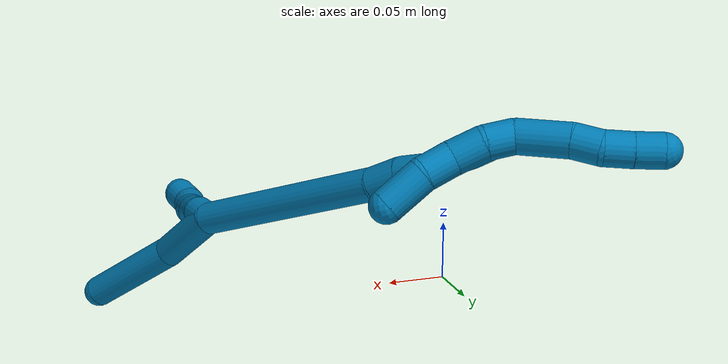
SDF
<sdf version="1.7">
 <world name="default">
  <model name="9">
   <static>0</static>
   <link name="9">
    <collision name="collision-cylinder-e_1_2_8">
     <pose>0.000753 -0.01478 -0.027156 2.64316 0.024357 0.095636</pose>
     <geometry><cylinder><radius>0.0125</radius><length>0.061853</length></cylinder></geometry>
     <surface>
      <friction><ode><mu>1.16</mu><mu2>1.16</mu2><slip1>0</slip1><slip2>0</slip2></ode></friction>
      <contact><ode><kp>1e+06</kp><kd>1</kd><max_vel>0</max_vel><min_depth>0.001</min_depth></ode></contact>
     </surface>
    </collision>
    <visual name="visual-cylinder-e_1_2_8">
     <pose>0.000753 -0.01478 -0.027156 2.64316 0.024357 0.095636</pose>
     <geometry><cylinder><radius>0.0125</radius><length>0.061853</length></cylinder></geometry>
     <material><ambient>0 0.490196 0.709804 1</ambient></material>
    </visual>
    <collision name="collision-cylinder-e_2_8_6">
     <pose>-0.000358 -0.042689 -0.096342 2.83882 -0.042324 -0.275712</pose>
     <geometry><cylinder><radius>0.0125</radius><length>0.088147</length></cylinder></geometry>
     <surface>
      <friction><ode><mu>1.16</mu><mu2>1.16</mu2><slip1>0</slip1><slip2>0</slip2></ode></friction>
      <contact><ode><kp>1e+06</kp><kd>1</kd><max_vel>0</max_vel><min_depth>0.001</min_depth></ode></contact>
     </surface>
    </collision>
    <visual name="visual-cylinder-e_2_8_6">
     <pose>-0.000358 -0.042689 -0.096342 2.83882 -0.042324 -0.275712</pose>
     <geometry><cylinder><radius>0.0125</radius><length>0.088147</length></cylinder></geometry>
     <material><ambient>0 0.490196 0.709804 1</ambient></material>
    </visual>
    <collision name="collision-cylinder-e_1_2_9">
     <pose>0.00679 -0.002431 -0.006927 2.80406 0.746361 2.32066</pose>
     <geometry><cylinder><radius>0.0125</radius><length>0.02</length></cylinder></geometry>
     <surface>
      <friction><ode><mu>1.16</mu><mu2>1.16</mu2><slip1>0</slip1><slip2>0</slip2></ode></friction>
      <contact><ode><kp>1e+06</kp><kd>1</kd><max_vel>0</max_vel><min_depth>0.001</min_depth></ode></contact>
     </surface>
    </collision>
    <visual name="visual-cylinder-e_1_2_9">
     <pose>0.00679 -0.002431 -0.006927 2.80406 0.746361 2.32066</pose>
     <geometry><cylinder><radius>0.0125</radius><length>0.02</length></cylinder></geometry>
     <material><ambient>0 0.490196 0.709804 1</ambient></material>
    </visual>
    <collision name="collision-cylinder-e_2_9_10">
     <pose>0.019555 -0.009613 -0.020314 2.50742 0.640435 1.58132</pose>
     <geometry><cylinder><radius>0.0125</radius><length>0.02</length></cylinder></geometry>
     <surface>
      <friction><ode><mu>1.16</mu><mu2>1.16</mu2><slip1>0</slip1><slip2>0</slip2></ode></friction>
      <contact><ode><kp>1e+06</kp><kd>1</kd><max_vel>0</max_vel><min_depth>0.001</min_depth></ode></contact>
     </surface>
    </collision>
    <visual name="visual-cylinder-e_2_9_10">
     <pose>0.019555 -0.009613 -0.020314 2.50742 0.640435 1.58132</pose>
     <geometry><cylinder><radius>0.0125</radius><length>0.02</length></cylinder></geometry>
     <material><ambient>0 0.490196 0.709804 1</ambient></material>
    </visual>
    <collision name="collision-cylinder-e_3_10_11">
     <pose>0.031889 -0.019558 -0.032483 2.40345 0.689097 1.49591</pose>
     <geometry><cylinder><radius>0.0125</radius><length>0.02</length></cylinder></geometry>
     <surface>
      <friction><ode><mu>1.16</mu><mu2>1.16</mu2><slip1>0</slip1><slip2>0</slip2></ode></friction>
      <contact><ode><kp>1e+06</kp><kd>1</kd><max_vel>0</max_vel><min_depth>0.001</min_depth></ode></contact>
     </surface>
    </collision>
    <visual name="visual-cylinder-e_3_10_11">
     <pose>0.031889 -0.019558 -0.032483 2.40345 0.689097 1.49591</pose>
     <geometry><cylinder><radius>0.0125</radius><length>0.02</length></cylinder></geometry>
     <material><ambient>0 0.490196 0.709804 1</ambient></material>
    </visual>
    <collision name="collision-cylinder-e_4_11_12">
     <pose>0.046 -0.028789 -0.04305 2.44814 0.887096 1.84124</pose>
     <geometry><cylinder><radius>0.0125</radius><length>0.02</length></cylinder></geometry>
     <surface>
      <friction><ode><mu>1.16</mu><mu2>1.16</mu2><slip1>0</slip1><slip2>0</slip2></ode></friction>
      <contact><ode><kp>1e+06</kp><kd>1</kd><max_vel>0</max_vel><min_depth>0.001</min_depth></ode></contact>
     </surface>
    </collision>
    <visual name="visual-cylinder-e_4_11_12">
     <pose>0.046 -0.028789 -0.04305 2.44814 0.887096 1.84124</pose>
     <geometry><cylinder><radius>0.0125</radius><length>0.02</length></cylinder></geometry>
     <material><ambient>0 0.490196 0.709804 1</ambient></material>
    </visual>
    <collision name="collision-cylinder-e_5_12_5">
     <pose>0.0611 -0.034055 -0.054578 2.95951 0.825379 2.73046</pose>
     <geometry><cylinder><radius>0.0125</radius><length>0.02</length></cylinder></geometry>
     <surface>
      <friction><ode><mu>1.16</mu><mu2>1.16</mu2><slip1>0</slip1><slip2>0</slip2></ode></friction>
      <contact><ode><kp>1e+06</kp><kd>1</kd><max_vel>0</max_vel><min_depth>0.001</min_depth></ode></contact>
     </surface>
    </collision>
    <visual name="visual-cylinder-e_5_12_5">
     <pose>0.0611 -0.034055 -0.054578 2.95951 0.825379 2.73046</pose>
     <geometry><cylinder><radius>0.0125</radius><length>0.02</length></cylinder></geometry>
     <material><ambient>0 0.490196 0.709804 1</ambient></material>
    </visual>
    <collision name="collision-cylinder-e_1_2_13">
     <pose>-0.01606 0.016022 0.082001 -0.192958 -0.189896 0.018433</pose>
     <geometry><cylinder><radius>0.0125</radius><length>0.170162</length></cylinder></geometry>
     <surface>
      <friction><ode><mu>1.16</mu><mu2>1.16</mu2><slip1>0</slip1><slip2>0</slip2></ode></friction>
      <contact><ode><kp>1e+06</kp><kd>1</kd><max_vel>0</max_vel><min_depth>0.001</min_depth></ode></contact>
     </surface>
    </collision>
    <visual name="visual-cylinder-e_1_2_13">
     <pose>-0.01606 0.016022 0.082001 -0.192958 -0.189896 0.018433</pose>
     <geometry><cylinder><radius>0.0125</radius><length>0.170162</length></cylinder></geometry>
     <material><ambient>0 0.490196 0.709804 1</ambient></material>
    </visual>
    <collision name="collision-cylinder-e_2_13_14">
     <pose>-0.032293 0.034395 0.176386 -0.187568 -0.013759 0.001294</pose>
     <geometry><cylinder><radius>0.0125</radius><length>0.025213</length></cylinder></geometry>
     <surface>
      <friction><ode><mu>1.16</mu><mu2>1.16</mu2><slip1>0</slip1><slip2>0</slip2></ode></friction>
      <contact><ode><kp>1e+06</kp><kd>1</kd><max_vel>0</max_vel><min_depth>0.001</min_depth></ode></contact>
     </surface>
    </collision>
    <visual name="visual-cylinder-e_2_13_14">
     <pose>-0.032293 0.034395 0.176386 -0.187568 -0.013759 0.001294</pose>
     <geometry><cylinder><radius>0.0125</radius><length>0.025213</length></cylinder></geometry>
     <material><ambient>0 0.490196 0.709804 1</ambient></material>
    </visual>
    <collision name="collision-cylinder-e_3_14_15">
     <pose>-0.035003 0.037924 0.199891 -0.105587 -0.223088 0.011838</pose>
     <geometry><cylinder><radius>0.0125</radius><length>0.022935</length></cylinder></geometry>
     <surface>
      <friction><ode><mu>1.16</mu><mu2>1.16</mu2><slip1>0</slip1><slip2>0</slip2></ode></friction>
      <contact><ode><kp>1e+06</kp><kd>1</kd><max_vel>0</max_vel><min_depth>0.001</min_depth></ode></contact>
     </surface>
    </collision>
    <visual name="visual-cylinder-e_3_14_15">
     <pose>-0.035003 0.037924 0.199891 -0.105587 -0.223088 0.011838</pose>
     <geometry><cylinder><radius>0.0125</radius><length>0.022935</length></cylinder></geometry>
     <material><ambient>0 0.490196 0.709804 1</ambient></material>
    </visual>
    <collision name="collision-cylinder-e_4_15_16">
     <pose>-0.036894 0.04209 0.220588 -0.302421 0.064364 -0.009811</pose>
     <geometry><cylinder><radius>0.0125</radius><length>0.020105</length></cylinder></geometry>
     <surface>
      <friction><ode><mu>1.16</mu><mu2>1.16</mu2><slip1>0</slip1><slip2>0</slip2></ode></friction>
      <contact><ode><kp>1e+06</kp><kd>1</kd><max_vel>0</max_vel><min_depth>0.001</min_depth></ode></contact>
     </surface>
    </collision>
    <visual name="visual-cylinder-e_4_15_16">
     <pose>-0.036894 0.04209 0.220588 -0.302421 0.064364 -0.009811</pose>
     <geometry><cylinder><radius>0.0125</radius><length>0.020105</length></cylinder></geometry>
     <material><ambient>0 0.490196 0.709804 1</ambient></material>
    </visual>
    <collision name="collision-cylinder-e_5_16_17">
     <pose>-0.038086 0.048261 0.239897 -0.316094 -0.177665 0.028388</pose>
     <geometry><cylinder><radius>0.0125</radius><length>0.020806</length></cylinder></geometry>
     <surface>
      <friction><ode><mu>1.16</mu><mu2>1.16</mu2><slip1>0</slip1><slip2>0</slip2></ode></friction>
      <contact><ode><kp>1e+06</kp><kd>1</kd><max_vel>0</max_vel><min_depth>0.001</min_depth></ode></contact>
     </surface>
    </collision>
    <visual name="visual-cylinder-e_5_16_17">
     <pose>-0.038086 0.048261 0.239897 -0.316094 -0.177665 0.028388</pose>
     <geometry><cylinder><radius>0.0125</radius><length>0.020806</length></cylinder></geometry>
     <material><ambient>0 0.490196 0.709804 1</ambient></material>
    </visual>
    <collision name="collision-cylinder-e_6_17_18">
     <pose>-0.041134 0.055137 0.259127 -0.370861 -0.118164 0.022191</pose>
     <geometry><cylinder><radius>0.0125</radius><length>0.020524</length></cylinder></geometry>
     <surface>
      <friction><ode><mu>1.16</mu><mu2>1.16</mu2><slip1>0</slip1><slip2>0</slip2></ode></friction>
      <contact><ode><kp>1e+06</kp><kd>1</kd><max_vel>0</max_vel><min_depth>0.001</min_depth></ode></contact>
     </surface>
    </collision>
    <visual name="visual-cylinder-e_6_17_18">
     <pose>-0.041134 0.055137 0.259127 -0.370861 -0.118164 0.022191</pose>
     <geometry><cylinder><radius>0.0125</radius><length>0.020524</length></cylinder></geometry>
     <material><ambient>0 0.490196 0.709804 1</ambient></material>
    </visual>
    <collision name="collision-cylinder-e_7_18_1">
     <pose>-0.045171 0.061759 0.277898 -0.305876 -0.282901 0.043893</pose>
     <geometry><cylinder><radius>0.0125</radius><length>0.020255</length></cylinder></geometry>
     <surface>
      <friction><ode><mu>1.16</mu><mu2>1.16</mu2><slip1>0</slip1><slip2>0</slip2></ode></friction>
      <contact><ode><kp>1e+06</kp><kd>1</kd><max_vel>0</max_vel><min_depth>0.001</min_depth></ode></contact>
     </surface>
    </collision>
    <visual name="visual-cylinder-e_7_18_1">
     <pose>-0.045171 0.061759 0.277898 -0.305876 -0.282901 0.043893</pose>
     <geometry><cylinder><radius>0.0125</radius><length>0.020255</length></cylinder></geometry>
     <material><ambient>0 0.490196 0.709804 1</ambient></material>
    </visual>
    <collision name="collision-cylinder-e_1_1_19">
     <pose>-0.050671 0.059305 0.305918 0.279612 -0.136184 -0.019193</pose>
     <geometry><cylinder><radius>0.0125</radius><length>0.039372</length></cylinder></geometry>
     <surface>
      <friction><ode><mu>1.16</mu><mu2>1.16</mu2><slip1>0</slip1><slip2>0</slip2></ode></friction>
      <contact><ode><kp>1e+06</kp><kd>1</kd><max_vel>0</max_vel><min_depth>0.001</min_depth></ode></contact>
     </surface>
    </collision>
    <visual name="visual-cylinder-e_1_1_19">
     <pose>-0.050671 0.059305 0.305918 0.279612 -0.136184 -0.019193</pose>
     <geometry><cylinder><radius>0.0125</radius><length>0.039372</length></cylinder></geometry>
     <material><ambient>0 0.490196 0.709804 1</ambient></material>
    </visual>
    <collision name="collision-cylinder-e_2_19_20">
     <pose>-0.055925 0.050179 0.333633 0.395327 -0.259698 -0.052294</pose>
     <geometry><cylinder><radius>0.0125</radius><length>0.020112</length></cylinder></geometry>
     <surface>
      <friction><ode><mu>1.16</mu><mu2>1.16</mu2><slip1>0</slip1><slip2>0</slip2></ode></friction>
      <contact><ode><kp>1e+06</kp><kd>1</kd><max_vel>0</max_vel><min_depth>0.001</min_depth></ode></contact>
     </surface>
    </collision>
    <visual name="visual-cylinder-e_2_19_20">
     <pose>-0.055925 0.050179 0.333633 0.395327 -0.259698 -0.052294</pose>
     <geometry><cylinder><radius>0.0125</radius><length>0.020112</length></cylinder></geometry>
     <material><ambient>0 0.490196 0.709804 1</ambient></material>
    </visual>
    <collision name="collision-cylinder-e_3_20_21">
     <pose>-0.057998 0.041803 0.351643 0.473554 0.050105 0.012093</pose>
     <geometry><cylinder><radius>0.0125</radius><length>0.020343</length></cylinder></geometry>
     <surface>
      <friction><ode><mu>1.16</mu><mu2>1.16</mu2><slip1>0</slip1><slip2>0</slip2></ode></friction>
      <contact><ode><kp>1e+06</kp><kd>1</kd><max_vel>0</max_vel><min_depth>0.001</min_depth></ode></contact>
     </surface>
    </collision>
    <visual name="visual-cylinder-e_3_20_21">
     <pose>-0.057998 0.041803 0.351643 0.473554 0.050105 0.012093</pose>
     <geometry><cylinder><radius>0.0125</radius><length>0.020343</length></cylinder></geometry>
     <material><ambient>0 0.490196 0.709804 1</ambient></material>
    </visual>
    <collision name="collision-cylinder-e_4_21_4">
     <pose>-0.056681 0.032803 0.36974 0.449396 0.080229 0.018346</pose>
     <geometry><cylinder><radius>0.0125</radius><length>0.020173</length></cylinder></geometry>
     <surface>
      <friction><ode><mu>1.16</mu><mu2>1.16</mu2><slip1>0</slip1><slip2>0</slip2></ode></friction>
      <contact><ode><kp>1e+06</kp><kd>1</kd><max_vel>0</max_vel><min_depth>0.001</min_depth></ode></contact>
     </surface>
    </collision>
    <visual name="visual-cylinder-e_4_21_4">
     <pose>-0.056681 0.032803 0.36974 0.449396 0.080229 0.018346</pose>
     <geometry><cylinder><radius>0.0125</radius><length>0.020173</length></cylinder></geometry>
     <material><ambient>0 0.490196 0.709804 1</ambient></material>
    </visual>
    <collision name="collision-cylinder-e_1_1_22">
     <pose>-0.051797 0.068693 0.278061 -2.72734 -0.364646 1.44033</pose>
     <geometry><cylinder><radius>0.0125</radius><length>0.021305</length></cylinder></geometry>
     <surface>
      <friction><ode><mu>1.16</mu><mu2>1.16</mu2><slip1>0</slip1><slip2>0</slip2></ode></friction>
      <contact><ode><kp>1e+06</kp><kd>1</kd><max_vel>0</max_vel><min_depth>0.001</min_depth></ode></contact>
     </surface>
    </collision>
    <visual name="visual-cylinder-e_1_1_22">
     <pose>-0.051797 0.068693 0.278061 -2.72734 -0.364646 1.44033</pose>
     <geometry><cylinder><radius>0.0125</radius><length>0.021305</length></cylinder></geometry>
     <material><ambient>0 0.490196 0.709804 1</ambient></material>
    </visual>
    <collision name="collision-cylinder-e_2_22_23">
     <pose>-0.060496 0.074 0.258269 -3.02035 -0.427316 2.59606</pose>
     <geometry><cylinder><radius>0.0125</radius><length>0.023649</length></cylinder></geometry>
     <surface>
      <friction><ode><mu>1.16</mu><mu2>1.16</mu2><slip1>0</slip1><slip2>0</slip2></ode></friction>
      <contact><ode><kp>1e+06</kp><kd>1</kd><max_vel>0</max_vel><min_depth>0.001</min_depth></ode></contact>
     </surface>
    </collision>
    <visual name="visual-cylinder-e_2_22_23">
     <pose>-0.060496 0.074 0.258269 -3.02035 -0.427316 2.59606</pose>
     <geometry><cylinder><radius>0.0125</radius><length>0.023649</length></cylinder></geometry>
     <material><ambient>0 0.490196 0.709804 1</ambient></material>
    </visual>
    <collision name="collision-cylinder-e_3_23_24">
     <pose>-0.072165 0.077825 0.23868 -2.86558 -0.631343 2.33739</pose>
     <geometry><cylinder><radius>0.0125</radius><length>0.022936</length></cylinder></geometry>
     <surface>
      <friction><ode><mu>1.16</mu><mu2>1.16</mu2><slip1>0</slip1><slip2>0</slip2></ode></friction>
      <contact><ode><kp>1e+06</kp><kd>1</kd><max_vel>0</max_vel><min_depth>0.001</min_depth></ode></contact>
     </surface>
    </collision>
    <visual name="visual-cylinder-e_3_23_24">
     <pose>-0.072165 0.077825 0.23868 -2.86558 -0.631343 2.33739</pose>
     <geometry><cylinder><radius>0.0125</radius><length>0.022936</length></cylinder></geometry>
     <material><ambient>0 0.490196 0.709804 1</ambient></material>
    </visual>
    <collision name="collision-cylinder-e_4_24_3">
     <pose>-0.088698 0.07947 0.217058 3.07268 -0.653719 -2.93895</pose>
     <geometry><cylinder><radius>0.0125</radius><length>0.032111</length></cylinder></geometry>
     <surface>
      <friction><ode><mu>1.16</mu><mu2>1.16</mu2><slip1>0</slip1><slip2>0</slip2></ode></friction>
      <contact><ode><kp>1e+06</kp><kd>1</kd><max_vel>0</max_vel><min_depth>0.001</min_depth></ode></contact>
     </surface>
    </collision>
    <visual name="visual-cylinder-e_4_24_3">
     <pose>-0.088698 0.07947 0.217058 3.07268 -0.653719 -2.93895</pose>
     <geometry><cylinder><radius>0.0125</radius><length>0.032111</length></cylinder></geometry>
     <material><ambient>0 0.490196 0.709804 1</ambient></material>
    </visual>
    <collision name="collision-sphere-3">
     <pose>-0.098462 0.078592 0.204343 0 -0 0</pose>
     <geometry><sphere><radius>0.0125</radius></sphere></geometry>
     <surface>
      <friction><ode><mu>1.16</mu><mu2>1.16</mu2><slip1>0</slip1><slip2>0</slip2></ode></friction>
      <contact><ode><kp>1e+06</kp><kd>1</kd><max_vel>0</max_vel><min_depth>0.001</min_depth></ode></contact>
     </surface>
    </collision>
    <visual name="visual-sphere-3">
     <pose>-0.098462 0.078592 0.204343 0 -0 0</pose>
     <geometry><sphere><radius>0.0125</radius></sphere></geometry>
     <material><ambient>0 0.490196 0.709804 1</ambient></material>
    </visual>
    <collision name="collision-sphere-24">
     <pose>-0.078934 0.080348 0.229773 0 -0 0</pose>
     <geometry><sphere><radius>0.0125</radius></sphere></geometry>
     <surface>
      <friction><ode><mu>1.16</mu><mu2>1.16</mu2><slip1>0</slip1><slip2>0</slip2></ode></friction>
      <contact><ode><kp>1e+06</kp><kd>1</kd><max_vel>0</max_vel><min_depth>0.001</min_depth></ode></contact>
     </surface>
    </collision>
    <visual name="visual-sphere-24">
     <pose>-0.078934 0.080348 0.229773 0 -0 0</pose>
     <geometry><sphere><radius>0.0125</radius></sphere></geometry>
     <material><ambient>0 0.490196 0.709804 1</ambient></material>
    </visual>
    <collision name="collision-sphere-23">
     <pose>-0.065396 0.075302 0.247587 0 -0 0</pose>
     <geometry><sphere><radius>0.0125</radius></sphere></geometry>
     <surface>
      <friction><ode><mu>1.16</mu><mu2>1.16</mu2><slip1>0</slip1><slip2>0</slip2></ode></friction>
      <contact><ode><kp>1e+06</kp><kd>1</kd><max_vel>0</max_vel><min_depth>0.001</min_depth></ode></contact>
     </surface>
    </collision>
    <visual name="visual-sphere-23">
     <pose>-0.065396 0.075302 0.247587 0 -0 0</pose>
     <geometry><sphere><radius>0.0125</radius></sphere></geometry>
     <material><ambient>0 0.490196 0.709804 1</ambient></material>
    </visual>
    <collision name="collision-sphere-22">
     <pose>-0.055596 0.072699 0.268951 0 -0 0</pose>
     <geometry><sphere><radius>0.0125</radius></sphere></geometry>
     <surface>
      <friction><ode><mu>1.16</mu><mu2>1.16</mu2><slip1>0</slip1><slip2>0</slip2></ode></friction>
      <contact><ode><kp>1e+06</kp><kd>1</kd><max_vel>0</max_vel><min_depth>0.001</min_depth></ode></contact>
     </surface>
    </collision>
    <visual name="visual-sphere-22">
     <pose>-0.055596 0.072699 0.268951 0 -0 0</pose>
     <geometry><sphere><radius>0.0125</radius></sphere></geometry>
     <material><ambient>0 0.490196 0.709804 1</ambient></material>
    </visual>
    <collision name="collision-sphere-4">
     <pose>-0.055872 0.028435 0.378796 0 -0 0</pose>
     <geometry><sphere><radius>0.0125</radius></sphere></geometry>
     <surface>
      <friction><ode><mu>1.16</mu><mu2>1.16</mu2><slip1>0</slip1><slip2>0</slip2></ode></friction>
      <contact><ode><kp>1e+06</kp><kd>1</kd><max_vel>0</max_vel><min_depth>0.001</min_depth></ode></contact>
     </surface>
    </collision>
    <visual name="visual-sphere-4">
     <pose>-0.055872 0.028435 0.378796 0 -0 0</pose>
     <geometry><sphere><radius>0.0125</radius></sphere></geometry>
     <material><ambient>0 0.490196 0.709804 1</ambient></material>
    </visual>
    <collision name="collision-sphere-21">
     <pose>-0.057489 0.03717 0.360684 0 -0 0</pose>
     <geometry><sphere><radius>0.0125</radius></sphere></geometry>
     <surface>
      <friction><ode><mu>1.16</mu><mu2>1.16</mu2><slip1>0</slip1><slip2>0</slip2></ode></friction>
      <contact><ode><kp>1e+06</kp><kd>1</kd><max_vel>0</max_vel><min_depth>0.001</min_depth></ode></contact>
     </surface>
    </collision>
    <visual name="visual-sphere-21">
     <pose>-0.057489 0.03717 0.360684 0 -0 0</pose>
     <geometry><sphere><radius>0.0125</radius></sphere></geometry>
     <material><ambient>0 0.490196 0.709804 1</ambient></material>
    </visual>
    <collision name="collision-sphere-20">
     <pose>-0.058508 0.046436 0.342602 0 -0 0</pose>
     <geometry><sphere><radius>0.0125</radius></sphere></geometry>
     <surface>
      <friction><ode><mu>1.16</mu><mu2>1.16</mu2><slip1>0</slip1><slip2>0</slip2></ode></friction>
      <contact><ode><kp>1e+06</kp><kd>1</kd><max_vel>0</max_vel><min_depth>0.001</min_depth></ode></contact>
     </surface>
    </collision>
    <visual name="visual-sphere-20">
     <pose>-0.058508 0.046436 0.342602 0 -0 0</pose>
     <geometry><sphere><radius>0.0125</radius></sphere></geometry>
     <material><ambient>0 0.490196 0.709804 1</ambient></material>
    </visual>
    <collision name="collision-sphere-11">
     <pose>0.038247 -0.024752 -0.038192 0 -0 0</pose>
     <geometry><sphere><radius>0.0125</radius></sphere></geometry>
     <surface>
      <friction><ode><mu>1.16</mu><mu2>1.16</mu2><slip1>0</slip1><slip2>0</slip2></ode></friction>
      <contact><ode><kp>1e+06</kp><kd>1</kd><max_vel>0</max_vel><min_depth>0.001</min_depth></ode></contact>
     </surface>
    </collision>
    <visual name="visual-sphere-11">
     <pose>0.038247 -0.024752 -0.038192 0 -0 0</pose>
     <geometry><sphere><radius>0.0125</radius></sphere></geometry>
     <material><ambient>0 0.490196 0.709804 1</ambient></material>
    </visual>
    <collision name="collision-sphere-10">
     <pose>0.02553 -0.014364 -0.026773 0 -0 0</pose>
     <geometry><sphere><radius>0.0125</radius></sphere></geometry>
     <surface>
      <friction><ode><mu>1.16</mu><mu2>1.16</mu2><slip1>0</slip1><slip2>0</slip2></ode></friction>
      <contact><ode><kp>1e+06</kp><kd>1</kd><max_vel>0</max_vel><min_depth>0.001</min_depth></ode></contact>
     </surface>
    </collision>
    <visual name="visual-sphere-10">
     <pose>0.02553 -0.014364 -0.026773 0 -0 0</pose>
     <geometry><sphere><radius>0.0125</radius></sphere></geometry>
     <material><ambient>0 0.490196 0.709804 1</ambient></material>
    </visual>
    <collision name="collision-sphere-6">
     <pose>-0.002223 -0.055819 -0.138374 0 -0 0</pose>
     <geometry><sphere><radius>0.0125</radius></sphere></geometry>
     <surface>
      <friction><ode><mu>1.16</mu><mu2>1.16</mu2><slip1>0</slip1><slip2>0</slip2></ode></friction>
      <contact><ode><kp>1e+06</kp><kd>1</kd><max_vel>0</max_vel><min_depth>0.001</min_depth></ode></contact>
     </surface>
    </collision>
    <visual name="visual-sphere-6">
     <pose>-0.002223 -0.055819 -0.138374 0 -0 0</pose>
     <geometry><sphere><radius>0.0125</radius></sphere></geometry>
     <material><ambient>0 0.490196 0.709804 1</ambient></material>
    </visual>
    <collision name="collision-sphere-9">
     <pose>0.013579 -0.004863 -0.013855 0 -0 0</pose>
     <geometry><sphere><radius>0.0125</radius></sphere></geometry>
     <surface>
      <friction><ode><mu>1.16</mu><mu2>1.16</mu2><slip1>0</slip1><slip2>0</slip2></ode></friction>
      <contact><ode><kp>1e+06</kp><kd>1</kd><max_vel>0</max_vel><min_depth>0.001</min_depth></ode></contact>
     </surface>
    </collision>
    <visual name="visual-sphere-9">
     <pose>0.013579 -0.004863 -0.013855 0 -0 0</pose>
     <geometry><sphere><radius>0.0125</radius></sphere></geometry>
     <material><ambient>0 0.490196 0.709804 1</ambient></material>
    </visual>
    <collision name="collision-sphere-2">
     <geometry><sphere><radius>0.0125</radius></sphere></geometry>
     <surface>
      <friction><ode><mu>1.16</mu><mu2>1.16</mu2><slip1>0</slip1><slip2>0</slip2></ode></friction>
      <contact><ode><kp>1e+06</kp><kd>1</kd><max_vel>0</max_vel><min_depth>0.001</min_depth></ode></contact>
     </surface>
    </collision>
    <visual name="visual-sphere-2">
     <geometry><sphere><radius>0.0125</radius></sphere></geometry>
     <material><ambient>0 0.490196 0.709804 1</ambient></material>
    </visual>
    <collision name="collision-sphere-19">
     <pose>-0.053343 0.053922 0.324664 0 -0 0</pose>
     <geometry><sphere><radius>0.0125</radius></sphere></geometry>
     <surface>
      <friction><ode><mu>1.16</mu><mu2>1.16</mu2><slip1>0</slip1><slip2>0</slip2></ode></friction>
      <contact><ode><kp>1e+06</kp><kd>1</kd><max_vel>0</max_vel><min_depth>0.001</min_depth></ode></contact>
     </surface>
    </collision>
    <visual name="visual-sphere-19">
     <pose>-0.053343 0.053922 0.324664 0 -0 0</pose>
     <geometry><sphere><radius>0.0125</radius></sphere></geometry>
     <material><ambient>0 0.490196 0.709804 1</ambient></material>
    </visual>
    <collision name="collision-sphere-8">
     <pose>0.001506 -0.02956 -0.054311 0 -0 0</pose>
     <geometry><sphere><radius>0.0125</radius></sphere></geometry>
     <surface>
      <friction><ode><mu>1.16</mu><mu2>1.16</mu2><slip1>0</slip1><slip2>0</slip2></ode></friction>
      <contact><ode><kp>1e+06</kp><kd>1</kd><max_vel>0</max_vel><min_depth>0.001</min_depth></ode></contact>
     </surface>
    </collision>
    <visual name="visual-sphere-8">
     <pose>0.001506 -0.02956 -0.054311 0 -0 0</pose>
     <geometry><sphere><radius>0.0125</radius></sphere></geometry>
     <material><ambient>0 0.490196 0.709804 1</ambient></material>
    </visual>
    <collision name="collision-sphere-12">
     <pose>0.053752 -0.032827 -0.047908 0 -0 0</pose>
     <geometry><sphere><radius>0.0125</radius></sphere></geometry>
     <surface>
      <friction><ode><mu>1.16</mu><mu2>1.16</mu2><slip1>0</slip1><slip2>0</slip2></ode></friction>
      <contact><ode><kp>1e+06</kp><kd>1</kd><max_vel>0</max_vel><min_depth>0.001</min_depth></ode></contact>
     </surface>
    </collision>
    <visual name="visual-sphere-12">
     <pose>0.053752 -0.032827 -0.047908 0 -0 0</pose>
     <geometry><sphere><radius>0.0125</radius></sphere></geometry>
     <material><ambient>0 0.490196 0.709804 1</ambient></material>
    </visual>
    <collision name="collision-sphere-5">
     <pose>0.068448 -0.035283 -0.061249 0 -0 0</pose>
     <geometry><sphere><radius>0.0125</radius></sphere></geometry>
     <surface>
      <friction><ode><mu>1.16</mu><mu2>1.16</mu2><slip1>0</slip1><slip2>0</slip2></ode></friction>
      <contact><ode><kp>1e+06</kp><kd>1</kd><max_vel>0</max_vel><min_depth>0.001</min_depth></ode></contact>
     </surface>
    </collision>
    <visual name="visual-sphere-5">
     <pose>0.068448 -0.035283 -0.061249 0 -0 0</pose>
     <geometry><sphere><radius>0.0125</radius></sphere></geometry>
     <material><ambient>0 0.490196 0.709804 1</ambient></material>
    </visual>
    <collision name="collision-sphere-13">
     <pose>-0.032119 0.032044 0.164002 0 -0 0</pose>
     <geometry><sphere><radius>0.0125</radius></sphere></geometry>
     <surface>
      <friction><ode><mu>1.16</mu><mu2>1.16</mu2><slip1>0</slip1><slip2>0</slip2></ode></friction>
      <contact><ode><kp>1e+06</kp><kd>1</kd><max_vel>0</max_vel><min_depth>0.001</min_depth></ode></contact>
     </surface>
    </collision>
    <visual name="visual-sphere-13">
     <pose>-0.032119 0.032044 0.164002 0 -0 0</pose>
     <geometry><sphere><radius>0.0125</radius></sphere></geometry>
     <material><ambient>0 0.490196 0.709804 1</ambient></material>
    </visual>
    <collision name="collision-sphere-14">
     <pose>-0.032466 0.036745 0.18877 0 -0 0</pose>
     <geometry><sphere><radius>0.0125</radius></sphere></geometry>
     <surface>
      <friction><ode><mu>1.16</mu><mu2>1.16</mu2><slip1>0</slip1><slip2>0</slip2></ode></friction>
      <contact><ode><kp>1e+06</kp><kd>1</kd><max_vel>0</max_vel><min_depth>0.001</min_depth></ode></contact>
     </surface>
    </collision>
    <visual name="visual-sphere-14">
     <pose>-0.032466 0.036745 0.18877 0 -0 0</pose>
     <geometry><sphere><radius>0.0125</radius></sphere></geometry>
     <material><ambient>0 0.490196 0.709804 1</ambient></material>
    </visual>
    <collision name="collision-sphere-15">
     <pose>-0.03754 0.039102 0.211012 0 -0 0</pose>
     <geometry><sphere><radius>0.0125</radius></sphere></geometry>
     <surface>
      <friction><ode><mu>1.16</mu><mu2>1.16</mu2><slip1>0</slip1><slip2>0</slip2></ode></friction>
      <contact><ode><kp>1e+06</kp><kd>1</kd><max_vel>0</max_vel><min_depth>0.001</min_depth></ode></contact>
     </surface>
    </collision>
    <visual name="visual-sphere-15">
     <pose>-0.03754 0.039102 0.211012 0 -0 0</pose>
     <geometry><sphere><radius>0.0125</radius></sphere></geometry>
     <material><ambient>0 0.490196 0.709804 1</ambient></material>
    </visual>
    <collision name="collision-sphere-16">
     <pose>-0.036247 0.045078 0.230165 0 -0 0</pose>
     <geometry><sphere><radius>0.0125</radius></sphere></geometry>
     <surface>
      <friction><ode><mu>1.16</mu><mu2>1.16</mu2><slip1>0</slip1><slip2>0</slip2></ode></friction>
      <contact><ode><kp>1e+06</kp><kd>1</kd><max_vel>0</max_vel><min_depth>0.001</min_depth></ode></contact>
     </surface>
    </collision>
    <visual name="visual-sphere-16">
     <pose>-0.036247 0.045078 0.230165 0 -0 0</pose>
     <geometry><sphere><radius>0.0125</radius></sphere></geometry>
     <material><ambient>0 0.490196 0.709804 1</ambient></material>
    </visual>
    <collision name="collision-sphere-17">
     <pose>-0.039924 0.051444 0.249629 0 -0 0</pose>
     <geometry><sphere><radius>0.0125</radius></sphere></geometry>
     <surface>
      <friction><ode><mu>1.16</mu><mu2>1.16</mu2><slip1>0</slip1><slip2>0</slip2></ode></friction>
      <contact><ode><kp>1e+06</kp><kd>1</kd><max_vel>0</max_vel><min_depth>0.001</min_depth></ode></contact>
     </surface>
    </collision>
    <visual name="visual-sphere-17">
     <pose>-0.039924 0.051444 0.249629 0 -0 0</pose>
     <geometry><sphere><radius>0.0125</radius></sphere></geometry>
     <material><ambient>0 0.490196 0.709804 1</ambient></material>
    </visual>
    <collision name="collision-sphere-18">
     <pose>-0.042344 0.05883 0.268625 0 -0 0</pose>
     <geometry><sphere><radius>0.0125</radius></sphere></geometry>
     <surface>
      <friction><ode><mu>1.16</mu><mu2>1.16</mu2><slip1>0</slip1><slip2>0</slip2></ode></friction>
      <contact><ode><kp>1e+06</kp><kd>1</kd><max_vel>0</max_vel><min_depth>0.001</min_depth></ode></contact>
     </surface>
    </collision>
    <visual name="visual-sphere-18">
     <pose>-0.042344 0.05883 0.268625 0 -0 0</pose>
     <geometry><sphere><radius>0.0125</radius></sphere></geometry>
     <material><ambient>0 0.490196 0.709804 1</ambient></material>
    </visual>
    <collision name="collision-sphere-1">
     <pose>-0.047998 0.064687 0.287172 0 -0 0</pose>
     <geometry><sphere><radius>0.0125</radius></sphere></geometry>
     <surface>
      <friction><ode><mu>1.16</mu><mu2>1.16</mu2><slip1>0</slip1><slip2>0</slip2></ode></friction>
      <contact><ode><kp>1e+06</kp><kd>1</kd><max_vel>0</max_vel><min_depth>0.001</min_depth></ode></contact>
     </surface>
    </collision>
    <visual name="visual-sphere-1">
     <pose>-0.047998 0.064687 0.287172 0 -0 0</pose>
     <geometry><sphere><radius>0.0125</radius></sphere></geometry>
     <material><ambient>0 0.490196 0.709804 1</ambient></material>
    </visual>
    <inertial>
     <pose>-0.022403 0.019382 0.117177 0 -0 0</pose>
     <mass>0.75</mass>
     <inertia>
      <ixx>0.000501</ixx>
      <ixy>0</ixy>
      <ixz>0</ixz>
      <iyy>0.000364</iyy>
      <iyz>0</iyz>
      <izz>4.3e-05</izz>
     </inertia>
    </inertial>
   </link>
   <pose>0.226309 0.065339 0.099241 1.19099 -0.57888 -2.0438</pose>
  </model>
 </world>
</sdf>
